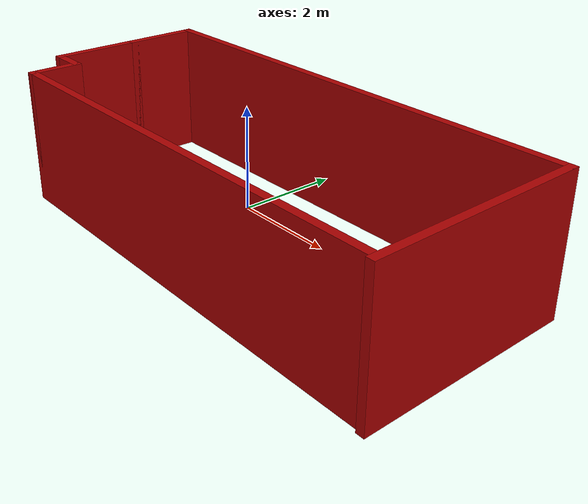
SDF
<?xml version='1.0'?>
<sdf version='1.6'>
  <model name='wall'>
    <pose frame=''>1.15595 -0.798125 0 0 -0 0</pose>
    <link name='Wall_11'>
      <collision name='Wall_11_Collision'>
        <geometry>
          <box>
            <size>1.75 0.15 2.5</size>
          </box>
        </geometry>
        <pose frame=''>0 0 1.25 0 -0 0</pose>
      </collision>
      <visual name='Wall_11_Visual'>
        <pose frame=''>0 0 1.25 0 -0 0</pose>
        <geometry>
          <box>
            <size>1.75 0.15 2.5</size>
          </box>
        </geometry>
        <material>
          <script>
            <uri>file://media/materials/scripts/gazebo.material</uri>
            <name>Gazebo/Grey</name>
          </script>
          <ambient>0.666667 0 0 1</ambient>
        </material>
        <meta>
          <layer>0</layer>
        </meta>
      </visual>
      <pose frame=''>-4.55 -0.225 0 0 0 -1.5708</pose>
    </link>
    <link name='Wall_12'>
      <collision name='Wall_12_Collision'>
        <geometry>
          <box>
            <size>0.75 0.15 2.5</size>
          </box>
        </geometry>
        <pose frame=''>0 0 1.25 0 -0 0</pose>
      </collision>
      <visual name='Wall_12_Visual'>
        <pose frame=''>0 0 1.25 0 -0 0</pose>
        <geometry>
          <box>
            <size>0.75 0.15 2.5</size>
          </box>
        </geometry>
        <material>
          <script>
            <uri>file://media/materials/scripts/gazebo.material</uri>
            <name>Gazebo/Grey</name>
          </script>
          <ambient>0.666667 0 0 1</ambient>
        </material>
        <meta>
          <layer>0</layer>
        </meta>
      </visual>
      <pose frame=''>-4.25 -1.025 0 0 -0 0</pose>
    </link>
    <link name='Wall_13'>
      <collision name='Wall_13_Collision'>
        <geometry>
          <box>
            <size>1 0.15 2.5</size>
          </box>
        </geometry>
        <pose frame=''>0 0 1.25 0 -0 0</pose>
      </collision>
      <visual name='Wall_13_Visual'>
        <pose frame=''>0 0 1.25 0 -0 0</pose>
        <geometry>
          <box>
            <size>1 0.15 2.5</size>
          </box>
        </geometry>
        <material>
          <script>
            <uri>file://media/materials/scripts/gazebo.material</uri>
            <name>Gazebo/Grey</name>
          </script>
          <ambient>0.666667 0 0 1</ambient>
        </material>
        <meta>
          <layer>0</layer>
        </meta>
      </visual>
      <pose frame=''>-3.95 -1.45 0 0 0 -1.5708</pose>
    </link>
    <link name='Wall_14'>
      <collision name='Wall_14_Collision'>
        <geometry>
          <box>
            <size>8.5 0.15 2.5</size>
          </box>
        </geometry>
        <pose frame=''>0 0 1.25 0 -0 0</pose>
      </collision>
      <visual name='Wall_14_Visual'>
        <pose frame=''>0 0 1.25 0 -0 0</pose>
        <geometry>
          <box>
            <size>8.5 0.15 2.5</size>
          </box>
        </geometry>
        <material>
          <script>
            <uri>file://media/materials/scripts/gazebo.material</uri>
            <name>Gazebo/Grey</name>
          </script>
          <ambient>0.666667 0 0 1</ambient>
        </material>
        <meta>
          <layer>0</layer>
        </meta>
      </visual>
      <pose frame=''>0.225 -1.875 0 0 -0 0</pose>
    </link>
    <link name='Wall_16'>
      <collision name='Wall_16_Collision'>
        <geometry>
          <box>
            <size>1.5 0.15 2.5</size>
          </box>
        </geometry>
        <pose frame=''>0 0 1.25 0 -0 0</pose>
      </collision>
      <visual name='Wall_16_Visual'>
        <pose frame=''>0 0 1.25 0 -0 0</pose>
        <geometry>
          <box>
            <size>1.5 0.15 2.5</size>
          </box>
        </geometry>
        <material>
          <script>
            <uri>file://media/materials/scripts/gazebo.material</uri>
            <name>Gazebo/Grey</name>
          </script>
          <ambient>0.666667 0 0 1</ambient>
        </material>
        <meta>
          <layer>0</layer>
        </meta>
      </visual>
      <pose frame=''>-4.55 1.25 0 0 -0 1.5708</pose>
    </link>
    <link name='Wall_17'>
      <collision name='Wall_17_Collision'>
        <geometry>
          <box>
            <size>9.25 0.15 2.5</size>
          </box>
        </geometry>
        <pose frame=''>0 0 1.25 0 -0 0</pose>
      </collision>
      <visual name='Wall_17_Visual'>
        <pose frame=''>0 0 1.25 0 -0 0</pose>
        <geometry>
          <box>
            <size>9.25 0.15 2.5</size>
          </box>
        </geometry>
        <material>
          <script>
            <uri>file://media/materials/scripts/gazebo.material</uri>
            <name>Gazebo/Grey</name>
          </script>
          <ambient>0.666667 0 0 1</ambient>
        </material>
        <meta>
          <layer>0</layer>
        </meta>
      </visual>
      <pose frame=''>0 1.925 0 0 -0 0</pose>
    </link>
    <link name='Wall_18'>
      <collision name='Wall_18_Collision'>
        <geometry>
          <box>
            <size>4 0.15 2.5</size>
          </box>
        </geometry>
        <pose frame=''>0 0 1.25 0 -0 0</pose>
      </collision>
      <visual name='Wall_18_Visual'>
        <pose frame=''>0 0 1.25 0 -0 0</pose>
        <geometry>
          <box>
            <size>4 0.15 2.5</size>
          </box>
        </geometry>
        <material>
          <script>
            <uri>file://media/materials/scripts/gazebo.material</uri>
            <name>Gazebo/Grey</name>
          </script>
          <ambient>0.666667 0 0 1</ambient>
        </material>
        <meta>
          <layer>0</layer>
        </meta>
      </visual>
      <pose frame=''>4.55 0 0 0 0 -1.5708</pose>
    </link>
    <static>1</static>
  </model>
</sdf>
